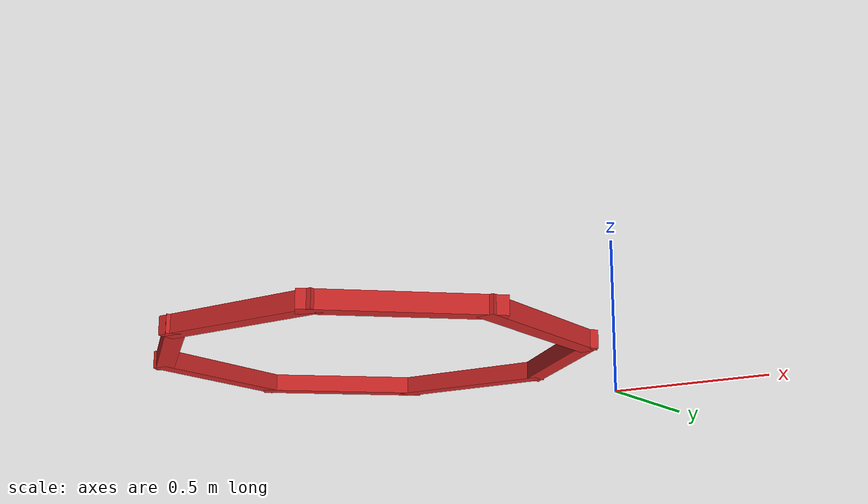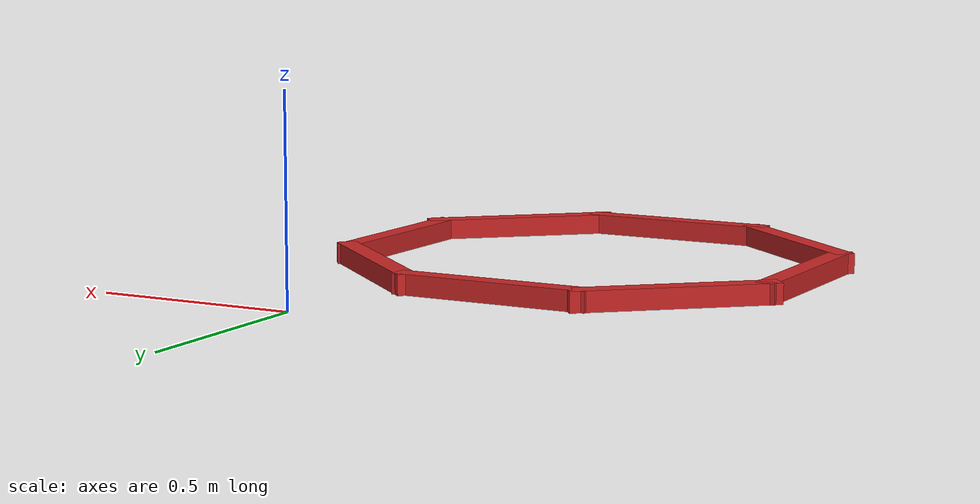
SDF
<?xml version='1.0'?>
<sdf version='1.7'>
  <model name='cilcle_red'>
    <link name='Wall_10'>
      <collision name='Wall_10_Collision'>
        <geometry>
          <box>
            <size>0.5 0.05 0.05</size>
          </box>
        </geometry>
        <pose>0 0 0.025 0 -0 0</pose>
      </collision>
      <visual name='Wall_10_Visual'>
        <pose>0 0 0.025 0 -0 0</pose>
        <geometry>
          <box>
            <size>0.5 0.05 0.05</size>
          </box>
        </geometry>
        <material>
          <script>
            <uri>file://media/materials/scripts/gazebo.material</uri>
            <name>Gazebo/Red</name>
          </script>
          <ambient>1 1 1 1</ambient>
        </material>
        <meta>
          <layer>0</layer>
        </meta>
      </visual>
      <pose>0.211044 -0.84996 0 0 -0 -1.59645</pose>
    </link>
    <link name='Wall_11'>
      <collision name='Wall_11_Collision'>
        <geometry>
          <box>
            <size>0.5 0.05 0.05</size>
          </box>
        </geometry>
        <pose>0 0 0.025 0 -0 0</pose>
      </collision>
      <visual name='Wall_11_Visual'>
        <pose>0 0 0.025 0 -0 0</pose>
        <geometry>
          <box>
            <size>0.5 0.05 0.05</size>
          </box>
        </geometry>
        <material>
          <script>
            <uri>file://media/materials/scripts/gazebo.material</uri>
            <name>Gazebo/Red</name>
          </script>
          <ambient>1 1 1 1</ambient>
        </material>
        <meta>
          <layer>0</layer>
        </meta>
      </visual>
      <pose>0.049581 -1.21473 0 0 -0 -2.42048</pose>
    </link>
    <link name='Wall_12'>
      <collision name='Wall_12_Collision'>
        <geometry>
          <box>
            <size>0.5 0.05 0.05</size>
          </box>
        </geometry>
        <pose>0 0 0.025 0 -0 0</pose>
      </collision>
      <visual name='Wall_12_Visual'>
        <pose>0 0 0.025 0 -0 0</pose>
        <geometry>
          <box>
            <size>0.5 0.05 0.05</size>
          </box>
        </geometry>
        <material>
          <script>
            <uri>file://media/materials/scripts/gazebo.material</uri>
            <name>Gazebo/Red</name>
          </script>
          <ambient>1 1 1 1</ambient>
        </material>
        <meta>
          <layer>0</layer>
        </meta>
      </visual>
      <pose>-0.339044 -1.35666 0 0 -0 3.14159</pose>
    </link>
    <link name='Wall_13'>
      <collision name='Wall_13_Collision'>
        <geometry>
          <box>
            <size>0.5 0.05 0.05</size>
          </box>
        </geometry>
        <pose>0 0 0.025 0 -0 0</pose>
      </collision>
      <visual name='Wall_13_Visual'>
        <pose>0 0 0.025 0 -0 0</pose>
        <geometry>
          <box>
            <size>0.5 0.05 0.05</size>
          </box>
        </geometry>
        <material>
          <script>
            <uri>file://media/materials/scripts/gazebo.material</uri>
            <name>Gazebo/Red</name>
          </script>
          <ambient>1 1 1 1</ambient>
        </material>
        <meta>
          <layer>0</layer>
        </meta>
      </visual>
      <pose>-0.731088 -1.21052 0 0 -0 2.44951</pose>
    </link>
    <link name='Wall_14'>
      <collision name='Wall_14_Collision'>
        <geometry>
          <box>
            <size>0.5 0.05 0.05</size>
          </box>
        </geometry>
        <pose>0 0 0.025 0 -0 0</pose>
      </collision>
      <visual name='Wall_14_Visual'>
        <pose>0 0 0.025 0 -0 0</pose>
        <geometry>
          <box>
            <size>0.5 0.05 0.05</size>
          </box>
        </geometry>
        <material>
          <script>
            <uri>file://media/materials/scripts/gazebo.material</uri>
            <name>Gazebo/Red</name>
          </script>
          <ambient>1 1 1 1</ambient>
        </material>
        <meta>
          <layer>0</layer>
        </meta>
      </visual>
      <pose>-0.903082 -0.839386 0 0 -0 1.5708</pose>
    </link>
    <link name='Wall_15'>
      <collision name='Wall_15_Collision'>
        <geometry>
          <box>
            <size>0.5 0.05 0.05</size>
          </box>
        </geometry>
        <pose>0 0 0.025 0 -0 0</pose>
      </collision>
      <visual name='Wall_15_Visual'>
        <pose>0 0 0.025 0 -0 0</pose>
        <geometry>
          <box>
            <size>0.5 0.05 0.05</size>
          </box>
        </geometry>
        <material>
          <script>
            <uri>file://media/materials/scripts/gazebo.material</uri>
            <name>Gazebo/Red</name>
          </script>
          <ambient>1 1 1 1</ambient>
        </material>
        <meta>
          <layer>0</layer>
        </meta>
      </visual>
      <pose>-0.735571 -0.466548 0 0 -0 0.710474</pose>
    </link>
    <link name='Wall_8'>
      <collision name='Wall_8_Collision'>
        <geometry>
          <box>
            <size>0.5 0.05 0.05</size>
          </box>
        </geometry>
        <pose>0 0 0.025 0 -0 0</pose>
      </collision>
      <visual name='Wall_8_Visual'>
        <pose>0 0 0.025 0 -0 0</pose>
        <geometry>
          <box>
            <size>0.5 0.05 0.05</size>
          </box>
        </geometry>
        <material>
          <script>
            <uri>file://media/materials/scripts/gazebo.material</uri>
            <name>Gazebo/Red</name>
          </script>
          <ambient>1 1 1 1</ambient>
        </material>
        <meta>
          <layer>0</layer>
        </meta>
      </visual>
      <pose>-0.340898 -0.326814 0 0 -0 -0.002435</pose>
    </link>
    <link name='Wall_9'>
      <collision name='Wall_9_Collision'>
        <geometry>
          <box>
            <size>0.5 0.05 0.05</size>
          </box>
        </geometry>
        <pose>0 0 0.025 0 -0 0</pose>
      </collision>
      <visual name='Wall_9_Visual'>
        <pose>0 0 0.025 0 -0 0</pose>
        <geometry>
          <box>
            <size>0.5 0.05 0.05</size>
          </box>
        </geometry>
        <material>
          <script>
            <uri>file://media/materials/scripts/gazebo.material</uri>
            <name>Gazebo/Red</name>
          </script>
          <ambient>1 1 1 1</ambient>
        </material>
        <meta>
          <layer>0</layer>
        </meta>
      </visual>
      <pose>0.053674 -0.472916 0 0 -0 -0.730212</pose>
    </link>
    <static>1</static>
  </model>
</sdf>
